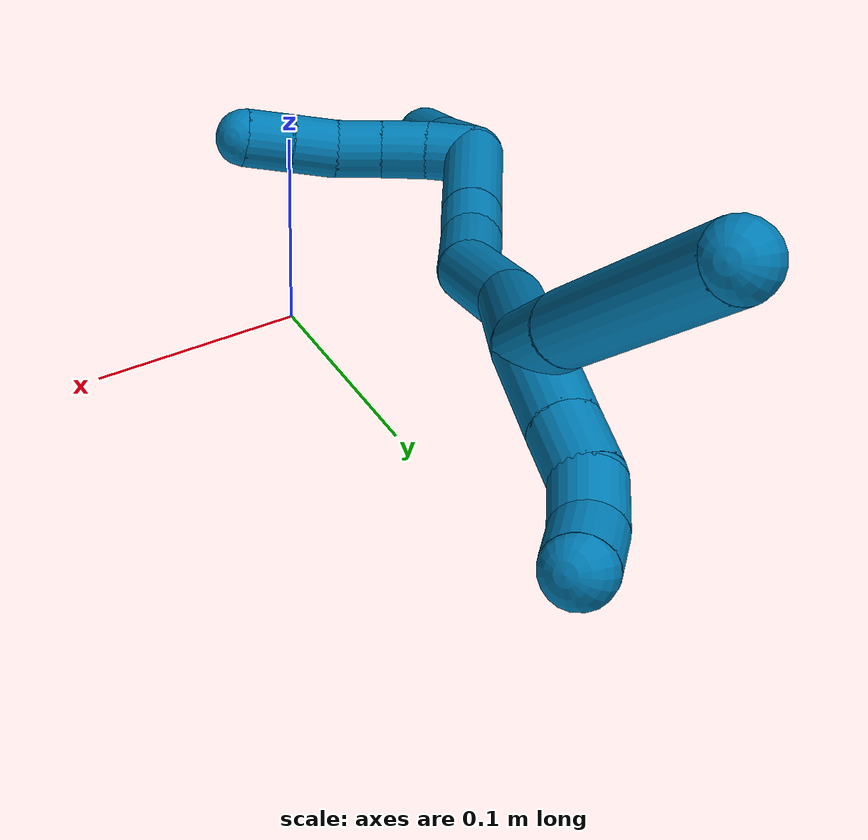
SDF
<sdf version="1.7">
 <world name="default">
  <model name="9">
   <static>0</static>
   <link name="9">
    <collision name="collision-cylinder-e_1_2_8">
     <pose>-0.010988 -0.005499 0.014569 0.360888 -0.614462 -0.115632</pose>
     <geometry><cylinder><radius>0.0125</radius><length>0.038117</length></cylinder></geometry>
     <surface>
      <friction><ode><mu>1.16</mu><mu2>1.16</mu2><slip1>0</slip1><slip2>0</slip2></ode></friction>
      <contact><ode><kp>1e+06</kp><kd>1</kd><max_vel>0</max_vel><min_depth>0.001</min_depth></ode></contact>
     </surface>
    </collision>
    <visual name="visual-cylinder-e_1_2_8">
     <pose>-0.010988 -0.005499 0.014569 0.360888 -0.614462 -0.115632</pose>
     <geometry><cylinder><radius>0.0125</radius><length>0.038117</length></cylinder></geometry>
     <material><ambient>0 0.490196 0.709804 1</ambient></material>
    </visual>
    <collision name="collision-cylinder-e_2_8_6">
     <pose>-0.0576 -0.027774 0.068874 0.399491 -0.690358 -0.145332</pose>
     <geometry><cylinder><radius>0.0125</radius><length>0.111883</length></cylinder></geometry>
     <surface>
      <friction><ode><mu>1.16</mu><mu2>1.16</mu2><slip1>0</slip1><slip2>0</slip2></ode></friction>
      <contact><ode><kp>1e+06</kp><kd>1</kd><max_vel>0</max_vel><min_depth>0.001</min_depth></ode></contact>
     </surface>
    </collision>
    <visual name="visual-cylinder-e_2_8_6">
     <pose>-0.0576 -0.027774 0.068874 0.399491 -0.690358 -0.145332</pose>
     <geometry><cylinder><radius>0.0125</radius><length>0.111883</length></cylinder></geometry>
     <material><ambient>0 0.490196 0.709804 1</ambient></material>
    </visual>
    <collision name="collision-cylinder-e_1_2_9">
     <pose>-0.011126 0.010168 0.010667 -0.761465 -0.646673 0.266662</pose>
     <geometry><cylinder><radius>0.0125</radius><length>0.03693</length></cylinder></geometry>
     <surface>
      <friction><ode><mu>1.16</mu><mu2>1.16</mu2><slip1>0</slip1><slip2>0</slip2></ode></friction>
      <contact><ode><kp>1e+06</kp><kd>1</kd><max_vel>0</max_vel><min_depth>0.001</min_depth></ode></contact>
     </surface>
    </collision>
    <visual name="visual-cylinder-e_1_2_9">
     <pose>-0.011126 0.010168 0.010667 -0.761465 -0.646673 0.266662</pose>
     <geometry><cylinder><radius>0.0125</radius><length>0.03693</length></cylinder></geometry>
     <material><ambient>0 0.490196 0.709804 1</ambient></material>
    </visual>
    <collision name="collision-cylinder-e_2_9_10">
     <pose>-0.029171 0.026537 0.02771 -0.771465 -0.66113 0.276911</pose>
     <geometry><cylinder><radius>0.0125</radius><length>0.022537</length></cylinder></geometry>
     <surface>
      <friction><ode><mu>1.16</mu><mu2>1.16</mu2><slip1>0</slip1><slip2>0</slip2></ode></friction>
      <contact><ode><kp>1e+06</kp><kd>1</kd><max_vel>0</max_vel><min_depth>0.001</min_depth></ode></contact>
     </surface>
    </collision>
    <visual name="visual-cylinder-e_2_9_10">
     <pose>-0.029171 0.026537 0.02771 -0.771465 -0.66113 0.276911</pose>
     <geometry><cylinder><radius>0.0125</radius><length>0.022537</length></cylinder></geometry>
     <material><ambient>0 0.490196 0.709804 1</ambient></material>
    </visual>
    <collision name="collision-cylinder-e_3_10_11">
     <pose>-0.039534 0.039045 0.041327 -0.71658 -0.344385 0.130062</pose>
     <geometry><cylinder><radius>0.0125</radius><length>0.020404</length></cylinder></geometry>
     <surface>
      <friction><ode><mu>1.16</mu><mu2>1.16</mu2><slip1>0</slip1><slip2>0</slip2></ode></friction>
      <contact><ode><kp>1e+06</kp><kd>1</kd><max_vel>0</max_vel><min_depth>0.001</min_depth></ode></contact>
     </surface>
    </collision>
    <visual name="visual-cylinder-e_3_10_11">
     <pose>-0.039534 0.039045 0.041327 -0.71658 -0.344385 0.130062</pose>
     <geometry><cylinder><radius>0.0125</radius><length>0.020404</length></cylinder></geometry>
     <material><ambient>0 0.490196 0.709804 1</ambient></material>
    </visual>
    <collision name="collision-cylinder-e_4_11_5">
     <pose>-0.045237 0.049093 0.057635 -0.391251 -0.22635 0.045038</pose>
     <geometry><cylinder><radius>0.0125</radius><length>0.020129</length></cylinder></geometry>
     <surface>
      <friction><ode><mu>1.16</mu><mu2>1.16</mu2><slip1>0</slip1><slip2>0</slip2></ode></friction>
      <contact><ode><kp>1e+06</kp><kd>1</kd><max_vel>0</max_vel><min_depth>0.001</min_depth></ode></contact>
     </surface>
    </collision>
    <visual name="visual-cylinder-e_4_11_5">
     <pose>-0.045237 0.049093 0.057635 -0.391251 -0.22635 0.045038</pose>
     <geometry><cylinder><radius>0.0125</radius><length>0.020129</length></cylinder></geometry>
     <material><ambient>0 0.490196 0.709804 1</ambient></material>
    </visual>
    <collision name="collision-cylinder-e_1_2_12">
     <pose>0.025975 -0.000178 -0.060318 3.13864 0.406635 3.12725</pose>
     <geometry><cylinder><radius>0.0125</radius><length>0.131347</length></cylinder></geometry>
     <surface>
      <friction><ode><mu>1.16</mu><mu2>1.16</mu2><slip1>0</slip1><slip2>0</slip2></ode></friction>
      <contact><ode><kp>1e+06</kp><kd>1</kd><max_vel>0</max_vel><min_depth>0.001</min_depth></ode></contact>
     </surface>
    </collision>
    <visual name="visual-cylinder-e_1_2_12">
     <pose>0.025975 -0.000178 -0.060318 3.13864 0.406635 3.12725</pose>
     <geometry><cylinder><radius>0.0125</radius><length>0.131347</length></cylinder></geometry>
     <material><ambient>0 0.490196 0.709804 1</ambient></material>
    </visual>
    <collision name="collision-cylinder-e_2_12_13">
     <pose>0.069725 -0.002927 -0.142777 3.02602 0.673171 2.81389</pose>
     <geometry><cylinder><radius>0.0125</radius><length>0.057018</length></cylinder></geometry>
     <surface>
      <friction><ode><mu>1.16</mu><mu2>1.16</mu2><slip1>0</slip1><slip2>0</slip2></ode></friction>
      <contact><ode><kp>1e+06</kp><kd>1</kd><max_vel>0</max_vel><min_depth>0.001</min_depth></ode></contact>
     </surface>
    </collision>
    <visual name="visual-cylinder-e_2_12_13">
     <pose>0.069725 -0.002927 -0.142777 3.02602 0.673171 2.81389</pose>
     <geometry><cylinder><radius>0.0125</radius><length>0.057018</length></cylinder></geometry>
     <material><ambient>0 0.490196 0.709804 1</ambient></material>
    </visual>
    <collision name="collision-cylinder-e_3_13_14">
     <pose>0.093938 -0.01 -0.180896 2.86694 0.36998 1.86938</pose>
     <geometry><cylinder><radius>0.0125</radius><length>0.03561</length></cylinder></geometry>
     <surface>
      <friction><ode><mu>1.16</mu><mu2>1.16</mu2><slip1>0</slip1><slip2>0</slip2></ode></friction>
      <contact><ode><kp>1e+06</kp><kd>1</kd><max_vel>0</max_vel><min_depth>0.001</min_depth></ode></contact>
     </surface>
    </collision>
    <visual name="visual-cylinder-e_3_13_14">
     <pose>0.093938 -0.01 -0.180896 2.86694 0.36998 1.86938</pose>
     <geometry><cylinder><radius>0.0125</radius><length>0.03561</length></cylinder></geometry>
     <material><ambient>0 0.490196 0.709804 1</ambient></material>
    </visual>
    <collision name="collision-cylinder-e_4_14_15">
     <pose>0.104559 -0.019277 -0.205916 2.65571 0.388339 1.34148</pose>
     <geometry><cylinder><radius>0.0125</radius><length>0.022095</length></cylinder></geometry>
     <surface>
      <friction><ode><mu>1.16</mu><mu2>1.16</mu2><slip1>0</slip1><slip2>0</slip2></ode></friction>
      <contact><ode><kp>1e+06</kp><kd>1</kd><max_vel>0</max_vel><min_depth>0.001</min_depth></ode></contact>
     </surface>
    </collision>
    <visual name="visual-cylinder-e_4_14_15">
     <pose>0.104559 -0.019277 -0.205916 2.65571 0.388339 1.34148</pose>
     <geometry><cylinder><radius>0.0125</radius><length>0.022095</length></cylinder></geometry>
     <material><ambient>0 0.490196 0.709804 1</ambient></material>
    </visual>
    <collision name="collision-cylinder-e_5_15_1">
     <pose>0.118661 -0.035229 -0.237402 2.67955 0.376693 1.362</pose>
     <geometry><cylinder><radius>0.0125</radius><length>0.05393</length></cylinder></geometry>
     <surface>
      <friction><ode><mu>1.16</mu><mu2>1.16</mu2><slip1>0</slip1><slip2>0</slip2></ode></friction>
      <contact><ode><kp>1e+06</kp><kd>1</kd><max_vel>0</max_vel><min_depth>0.001</min_depth></ode></contact>
     </surface>
    </collision>
    <visual name="visual-cylinder-e_5_15_1">
     <pose>0.118661 -0.035229 -0.237402 2.67955 0.376693 1.362</pose>
     <geometry><cylinder><radius>0.0125</radius><length>0.05393</length></cylinder></geometry>
     <material><ambient>0 0.490196 0.709804 1</ambient></material>
    </visual>
    <collision name="collision-cylinder-e_1_1_16">
     <pose>0.138343 -0.046096 -0.257704 -0.143991 1.35248 -0.115618</pose>
     <geometry><cylinder><radius>0.0125</radius><length>0.02</length></cylinder></geometry>
     <surface>
      <friction><ode><mu>1.16</mu><mu2>1.16</mu2><slip1>0</slip1><slip2>0</slip2></ode></friction>
      <contact><ode><kp>1e+06</kp><kd>1</kd><max_vel>0</max_vel><min_depth>0.001</min_depth></ode></contact>
     </surface>
    </collision>
    <visual name="visual-cylinder-e_1_1_16">
     <pose>0.138343 -0.046096 -0.257704 -0.143991 1.35248 -0.115618</pose>
     <geometry><cylinder><radius>0.0125</radius><length>0.02</length></cylinder></geometry>
     <material><ambient>0 0.490196 0.709804 1</ambient></material>
    </visual>
    <collision name="collision-cylinder-e_2_16_17">
     <pose>0.157458 -0.044833 -0.252152 -0.272628 1.20909 -0.188951</pose>
     <geometry><cylinder><radius>0.0125</radius><length>0.02</length></cylinder></geometry>
     <surface>
      <friction><ode><mu>1.16</mu><mu2>1.16</mu2><slip1>0</slip1><slip2>0</slip2></ode></friction>
      <contact><ode><kp>1e+06</kp><kd>1</kd><max_vel>0</max_vel><min_depth>0.001</min_depth></ode></contact>
     </surface>
    </collision>
    <visual name="visual-cylinder-e_2_16_17">
     <pose>0.157458 -0.044833 -0.252152 -0.272628 1.20909 -0.188951</pose>
     <geometry><cylinder><radius>0.0125</radius><length>0.02</length></cylinder></geometry>
     <material><ambient>0 0.490196 0.709804 1</ambient></material>
    </visual>
    <collision name="collision-cylinder-e_3_17_18">
     <pose>0.175768 -0.042719 -0.24445 -0.263979 1.10982 -0.164223</pose>
     <geometry><cylinder><radius>0.0125</radius><length>0.02</length></cylinder></geometry>
     <surface>
      <friction><ode><mu>1.16</mu><mu2>1.16</mu2><slip1>0</slip1><slip2>0</slip2></ode></friction>
      <contact><ode><kp>1e+06</kp><kd>1</kd><max_vel>0</max_vel><min_depth>0.001</min_depth></ode></contact>
     </surface>
    </collision>
    <visual name="visual-cylinder-e_3_17_18">
     <pose>0.175768 -0.042719 -0.24445 -0.263979 1.10982 -0.164223</pose>
     <geometry><cylinder><radius>0.0125</radius><length>0.02</length></cylinder></geometry>
     <material><ambient>0 0.490196 0.709804 1</ambient></material>
    </visual>
    <collision name="collision-cylinder-e_4_18_19">
     <pose>0.192908 -0.041694 -0.234412 0.023637 0.958639 0.012286</pose>
     <geometry><cylinder><radius>0.0125</radius><length>0.02</length></cylinder></geometry>
     <surface>
      <friction><ode><mu>1.16</mu><mu2>1.16</mu2><slip1>0</slip1><slip2>0</slip2></ode></friction>
      <contact><ode><kp>1e+06</kp><kd>1</kd><max_vel>0</max_vel><min_depth>0.001</min_depth></ode></contact>
     </surface>
    </collision>
    <visual name="visual-cylinder-e_4_18_19">
     <pose>0.192908 -0.041694 -0.234412 0.023637 0.958639 0.012286</pose>
     <geometry><cylinder><radius>0.0125</radius><length>0.02</length></cylinder></geometry>
     <material><ambient>0 0.490196 0.709804 1</ambient></material>
    </visual>
    <collision name="collision-cylinder-e_5_19_4">
     <pose>0.209352 -0.041954 -0.223031 0.021961 0.971902 0.0116</pose>
     <geometry><cylinder><radius>0.0125</radius><length>0.02</length></cylinder></geometry>
     <surface>
      <friction><ode><mu>1.16</mu><mu2>1.16</mu2><slip1>0</slip1><slip2>0</slip2></ode></friction>
      <contact><ode><kp>1e+06</kp><kd>1</kd><max_vel>0</max_vel><min_depth>0.001</min_depth></ode></contact>
     </surface>
    </collision>
    <visual name="visual-cylinder-e_5_19_4">
     <pose>0.209352 -0.041954 -0.223031 0.021961 0.971902 0.0116</pose>
     <geometry><cylinder><radius>0.0125</radius><length>0.02</length></cylinder></geometry>
     <material><ambient>0 0.490196 0.709804 1</ambient></material>
    </visual>
    <collision name="collision-cylinder-e_1_1_20">
     <pose>0.144898 -0.046789 -0.283311 3.12533 0.607602 3.08972</pose>
     <geometry><cylinder><radius>0.0125</radius><length>0.057166</length></cylinder></geometry>
     <surface>
      <friction><ode><mu>1.16</mu><mu2>1.16</mu2><slip1>0</slip1><slip2>0</slip2></ode></friction>
      <contact><ode><kp>1e+06</kp><kd>1</kd><max_vel>0</max_vel><min_depth>0.001</min_depth></ode></contact>
     </surface>
    </collision>
    <visual name="visual-cylinder-e_1_1_20">
     <pose>0.144898 -0.046789 -0.283311 3.12533 0.607602 3.08972</pose>
     <geometry><cylinder><radius>0.0125</radius><length>0.057166</length></cylinder></geometry>
     <material><ambient>0 0.490196 0.709804 1</ambient></material>
    </visual>
    <collision name="collision-cylinder-e_2_20_3">
     <pose>0.173746 -0.048198 -0.324114 3.08237 0.62494 2.95874</pose>
     <geometry><cylinder><radius>0.0125</radius><length>0.042834</length></cylinder></geometry>
     <surface>
      <friction><ode><mu>1.16</mu><mu2>1.16</mu2><slip1>0</slip1><slip2>0</slip2></ode></friction>
      <contact><ode><kp>1e+06</kp><kd>1</kd><max_vel>0</max_vel><min_depth>0.001</min_depth></ode></contact>
     </surface>
    </collision>
    <visual name="visual-cylinder-e_2_20_3">
     <pose>0.173746 -0.048198 -0.324114 3.08237 0.62494 2.95874</pose>
     <geometry><cylinder><radius>0.0125</radius><length>0.042834</length></cylinder></geometry>
     <material><ambient>0 0.490196 0.709804 1</ambient></material>
    </visual>
    <collision name="collision-sphere-3">
     <pose>0.186276 -0.049226 -0.341453 0 -0 0</pose>
     <geometry><sphere><radius>0.0125</radius></sphere></geometry>
     <surface>
      <friction><ode><mu>1.16</mu><mu2>1.16</mu2><slip1>0</slip1><slip2>0</slip2></ode></friction>
      <contact><ode><kp>1e+06</kp><kd>1</kd><max_vel>0</max_vel><min_depth>0.001</min_depth></ode></contact>
     </surface>
    </collision>
    <visual name="visual-sphere-3">
     <pose>0.186276 -0.049226 -0.341453 0 -0 0</pose>
     <geometry><sphere><radius>0.0125</radius></sphere></geometry>
     <material><ambient>0 0.490196 0.709804 1</ambient></material>
    </visual>
    <collision name="collision-sphere-20">
     <pose>0.161216 -0.04717 -0.306775 0 -0 0</pose>
     <geometry><sphere><radius>0.0125</radius></sphere></geometry>
     <surface>
      <friction><ode><mu>1.16</mu><mu2>1.16</mu2><slip1>0</slip1><slip2>0</slip2></ode></friction>
      <contact><ode><kp>1e+06</kp><kd>1</kd><max_vel>0</max_vel><min_depth>0.001</min_depth></ode></contact>
     </surface>
    </collision>
    <visual name="visual-sphere-20">
     <pose>0.161216 -0.04717 -0.306775 0 -0 0</pose>
     <geometry><sphere><radius>0.0125</radius></sphere></geometry>
     <material><ambient>0 0.490196 0.709804 1</ambient></material>
    </visual>
    <collision name="collision-sphere-4">
     <pose>0.217611 -0.042078 -0.217395 0 -0 0</pose>
     <geometry><sphere><radius>0.0125</radius></sphere></geometry>
     <surface>
      <friction><ode><mu>1.16</mu><mu2>1.16</mu2><slip1>0</slip1><slip2>0</slip2></ode></friction>
      <contact><ode><kp>1e+06</kp><kd>1</kd><max_vel>0</max_vel><min_depth>0.001</min_depth></ode></contact>
     </surface>
    </collision>
    <visual name="visual-sphere-4">
     <pose>0.217611 -0.042078 -0.217395 0 -0 0</pose>
     <geometry><sphere><radius>0.0125</radius></sphere></geometry>
     <material><ambient>0 0.490196 0.709804 1</ambient></material>
    </visual>
    <collision name="collision-sphere-11">
     <pose>-0.042978 0.045353 0.048568 0 -0 0</pose>
     <geometry><sphere><radius>0.0125</radius></sphere></geometry>
     <surface>
      <friction><ode><mu>1.16</mu><mu2>1.16</mu2><slip1>0</slip1><slip2>0</slip2></ode></friction>
      <contact><ode><kp>1e+06</kp><kd>1</kd><max_vel>0</max_vel><min_depth>0.001</min_depth></ode></contact>
     </surface>
    </collision>
    <visual name="visual-sphere-11">
     <pose>-0.042978 0.045353 0.048568 0 -0 0</pose>
     <geometry><sphere><radius>0.0125</radius></sphere></geometry>
     <material><ambient>0 0.490196 0.709804 1</ambient></material>
    </visual>
    <collision name="collision-sphere-10">
     <pose>-0.036089 0.032738 0.034086 0 -0 0</pose>
     <geometry><sphere><radius>0.0125</radius></sphere></geometry>
     <surface>
      <friction><ode><mu>1.16</mu><mu2>1.16</mu2><slip1>0</slip1><slip2>0</slip2></ode></friction>
      <contact><ode><kp>1e+06</kp><kd>1</kd><max_vel>0</max_vel><min_depth>0.001</min_depth></ode></contact>
     </surface>
    </collision>
    <visual name="visual-sphere-10">
     <pose>-0.036089 0.032738 0.034086 0 -0 0</pose>
     <geometry><sphere><radius>0.0125</radius></sphere></geometry>
     <material><ambient>0 0.490196 0.709804 1</ambient></material>
    </visual>
    <collision name="collision-sphere-6">
     <pose>-0.093224 -0.04455 0.10861 0 -0 0</pose>
     <geometry><sphere><radius>0.0125</radius></sphere></geometry>
     <surface>
      <friction><ode><mu>1.16</mu><mu2>1.16</mu2><slip1>0</slip1><slip2>0</slip2></ode></friction>
      <contact><ode><kp>1e+06</kp><kd>1</kd><max_vel>0</max_vel><min_depth>0.001</min_depth></ode></contact>
     </surface>
    </collision>
    <visual name="visual-sphere-6">
     <pose>-0.093224 -0.04455 0.10861 0 -0 0</pose>
     <geometry><sphere><radius>0.0125</radius></sphere></geometry>
     <material><ambient>0 0.490196 0.709804 1</ambient></material>
    </visual>
    <collision name="collision-sphere-9">
     <pose>-0.022252 0.020336 0.021334 0 -0 0</pose>
     <geometry><sphere><radius>0.0125</radius></sphere></geometry>
     <surface>
      <friction><ode><mu>1.16</mu><mu2>1.16</mu2><slip1>0</slip1><slip2>0</slip2></ode></friction>
      <contact><ode><kp>1e+06</kp><kd>1</kd><max_vel>0</max_vel><min_depth>0.001</min_depth></ode></contact>
     </surface>
    </collision>
    <visual name="visual-sphere-9">
     <pose>-0.022252 0.020336 0.021334 0 -0 0</pose>
     <geometry><sphere><radius>0.0125</radius></sphere></geometry>
     <material><ambient>0 0.490196 0.709804 1</ambient></material>
    </visual>
    <collision name="collision-sphere-2">
     <geometry><sphere><radius>0.0125</radius></sphere></geometry>
     <surface>
      <friction><ode><mu>1.16</mu><mu2>1.16</mu2><slip1>0</slip1><slip2>0</slip2></ode></friction>
      <contact><ode><kp>1e+06</kp><kd>1</kd><max_vel>0</max_vel><min_depth>0.001</min_depth></ode></contact>
     </surface>
    </collision>
    <visual name="visual-sphere-2">
     <geometry><sphere><radius>0.0125</radius></sphere></geometry>
     <material><ambient>0 0.490196 0.709804 1</ambient></material>
    </visual>
    <collision name="collision-sphere-19">
     <pose>0.201092 -0.04183 -0.228667 0 -0 0</pose>
     <geometry><sphere><radius>0.0125</radius></sphere></geometry>
     <surface>
      <friction><ode><mu>1.16</mu><mu2>1.16</mu2><slip1>0</slip1><slip2>0</slip2></ode></friction>
      <contact><ode><kp>1e+06</kp><kd>1</kd><max_vel>0</max_vel><min_depth>0.001</min_depth></ode></contact>
     </surface>
    </collision>
    <visual name="visual-sphere-19">
     <pose>0.201092 -0.04183 -0.228667 0 -0 0</pose>
     <geometry><sphere><radius>0.0125</radius></sphere></geometry>
     <material><ambient>0 0.490196 0.709804 1</ambient></material>
    </visual>
    <collision name="collision-sphere-8">
     <pose>-0.021975 -0.010997 0.029139 0 -0 0</pose>
     <geometry><sphere><radius>0.0125</radius></sphere></geometry>
     <surface>
      <friction><ode><mu>1.16</mu><mu2>1.16</mu2><slip1>0</slip1><slip2>0</slip2></ode></friction>
      <contact><ode><kp>1e+06</kp><kd>1</kd><max_vel>0</max_vel><min_depth>0.001</min_depth></ode></contact>
     </surface>
    </collision>
    <visual name="visual-sphere-8">
     <pose>-0.021975 -0.010997 0.029139 0 -0 0</pose>
     <geometry><sphere><radius>0.0125</radius></sphere></geometry>
     <material><ambient>0 0.490196 0.709804 1</ambient></material>
    </visual>
    <collision name="collision-sphere-5">
     <pose>-0.047496 0.052833 0.066702 0 -0 0</pose>
     <geometry><sphere><radius>0.0125</radius></sphere></geometry>
     <surface>
      <friction><ode><mu>1.16</mu><mu2>1.16</mu2><slip1>0</slip1><slip2>0</slip2></ode></friction>
      <contact><ode><kp>1e+06</kp><kd>1</kd><max_vel>0</max_vel><min_depth>0.001</min_depth></ode></contact>
     </surface>
    </collision>
    <visual name="visual-sphere-5">
     <pose>-0.047496 0.052833 0.066702 0 -0 0</pose>
     <geometry><sphere><radius>0.0125</radius></sphere></geometry>
     <material><ambient>0 0.490196 0.709804 1</ambient></material>
    </visual>
    <collision name="collision-sphere-12">
     <pose>0.05195 -0.000357 -0.120636 0 -0 0</pose>
     <geometry><sphere><radius>0.0125</radius></sphere></geometry>
     <surface>
      <friction><ode><mu>1.16</mu><mu2>1.16</mu2><slip1>0</slip1><slip2>0</slip2></ode></friction>
      <contact><ode><kp>1e+06</kp><kd>1</kd><max_vel>0</max_vel><min_depth>0.001</min_depth></ode></contact>
     </surface>
    </collision>
    <visual name="visual-sphere-12">
     <pose>0.05195 -0.000357 -0.120636 0 -0 0</pose>
     <geometry><sphere><radius>0.0125</radius></sphere></geometry>
     <material><ambient>0 0.490196 0.709804 1</ambient></material>
    </visual>
    <collision name="collision-sphere-13">
     <pose>0.087499 -0.005497 -0.164918 0 -0 0</pose>
     <geometry><sphere><radius>0.0125</radius></sphere></geometry>
     <surface>
      <friction><ode><mu>1.16</mu><mu2>1.16</mu2><slip1>0</slip1><slip2>0</slip2></ode></friction>
      <contact><ode><kp>1e+06</kp><kd>1</kd><max_vel>0</max_vel><min_depth>0.001</min_depth></ode></contact>
     </surface>
    </collision>
    <visual name="visual-sphere-13">
     <pose>0.087499 -0.005497 -0.164918 0 -0 0</pose>
     <geometry><sphere><radius>0.0125</radius></sphere></geometry>
     <material><ambient>0 0.490196 0.709804 1</ambient></material>
    </visual>
    <collision name="collision-sphere-14">
     <pose>0.100376 -0.014502 -0.196874 0 -0 0</pose>
     <geometry><sphere><radius>0.0125</radius></sphere></geometry>
     <surface>
      <friction><ode><mu>1.16</mu><mu2>1.16</mu2><slip1>0</slip1><slip2>0</slip2></ode></friction>
      <contact><ode><kp>1e+06</kp><kd>1</kd><max_vel>0</max_vel><min_depth>0.001</min_depth></ode></contact>
     </surface>
    </collision>
    <visual name="visual-sphere-14">
     <pose>0.100376 -0.014502 -0.196874 0 -0 0</pose>
     <geometry><sphere><radius>0.0125</radius></sphere></geometry>
     <material><ambient>0 0.490196 0.709804 1</ambient></material>
    </visual>
    <collision name="collision-sphere-15">
     <pose>0.108742 -0.024052 -0.214957 0 -0 0</pose>
     <geometry><sphere><radius>0.0125</radius></sphere></geometry>
     <surface>
      <friction><ode><mu>1.16</mu><mu2>1.16</mu2><slip1>0</slip1><slip2>0</slip2></ode></friction>
      <contact><ode><kp>1e+06</kp><kd>1</kd><max_vel>0</max_vel><min_depth>0.001</min_depth></ode></contact>
     </surface>
    </collision>
    <visual name="visual-sphere-15">
     <pose>0.108742 -0.024052 -0.214957 0 -0 0</pose>
     <geometry><sphere><radius>0.0125</radius></sphere></geometry>
     <material><ambient>0 0.490196 0.709804 1</ambient></material>
    </visual>
    <collision name="collision-sphere-1">
     <pose>0.12858 -0.046407 -0.259847 0 -0 0</pose>
     <geometry><sphere><radius>0.0125</radius></sphere></geometry>
     <surface>
      <friction><ode><mu>1.16</mu><mu2>1.16</mu2><slip1>0</slip1><slip2>0</slip2></ode></friction>
      <contact><ode><kp>1e+06</kp><kd>1</kd><max_vel>0</max_vel><min_depth>0.001</min_depth></ode></contact>
     </surface>
    </collision>
    <visual name="visual-sphere-1">
     <pose>0.12858 -0.046407 -0.259847 0 -0 0</pose>
     <geometry><sphere><radius>0.0125</radius></sphere></geometry>
     <material><ambient>0 0.490196 0.709804 1</ambient></material>
    </visual>
    <collision name="collision-sphere-18">
     <pose>0.184724 -0.041558 -0.240156 0 -0 0</pose>
     <geometry><sphere><radius>0.0125</radius></sphere></geometry>
     <surface>
      <friction><ode><mu>1.16</mu><mu2>1.16</mu2><slip1>0</slip1><slip2>0</slip2></ode></friction>
      <contact><ode><kp>1e+06</kp><kd>1</kd><max_vel>0</max_vel><min_depth>0.001</min_depth></ode></contact>
     </surface>
    </collision>
    <visual name="visual-sphere-18">
     <pose>0.184724 -0.041558 -0.240156 0 -0 0</pose>
     <geometry><sphere><radius>0.0125</radius></sphere></geometry>
     <material><ambient>0 0.490196 0.709804 1</ambient></material>
    </visual>
    <collision name="collision-sphere-16">
     <pose>0.148106 -0.045785 -0.25556 0 -0 0</pose>
     <geometry><sphere><radius>0.0125</radius></sphere></geometry>
     <surface>
      <friction><ode><mu>1.16</mu><mu2>1.16</mu2><slip1>0</slip1><slip2>0</slip2></ode></friction>
      <contact><ode><kp>1e+06</kp><kd>1</kd><max_vel>0</max_vel><min_depth>0.001</min_depth></ode></contact>
     </surface>
    </collision>
    <visual name="visual-sphere-16">
     <pose>0.148106 -0.045785 -0.25556 0 -0 0</pose>
     <geometry><sphere><radius>0.0125</radius></sphere></geometry>
     <material><ambient>0 0.490196 0.709804 1</ambient></material>
    </visual>
    <collision name="collision-sphere-17">
     <pose>0.166811 -0.04388 -0.248744 0 -0 0</pose>
     <geometry><sphere><radius>0.0125</radius></sphere></geometry>
     <surface>
      <friction><ode><mu>1.16</mu><mu2>1.16</mu2><slip1>0</slip1><slip2>0</slip2></ode></friction>
      <contact><ode><kp>1e+06</kp><kd>1</kd><max_vel>0</max_vel><min_depth>0.001</min_depth></ode></contact>
     </surface>
    </collision>
    <visual name="visual-sphere-17">
     <pose>0.166811 -0.04388 -0.248744 0 -0 0</pose>
     <geometry><sphere><radius>0.0125</radius></sphere></geometry>
     <material><ambient>0 0.490196 0.709804 1</ambient></material>
    </visual>
    <inertial>
     <pose>0.057327 -0.016688 -0.110518 0 -0 0</pose>
     <mass>0.75</mass>
     <inertia><ixx>-7.4e-05</ixx><ixy>0</ixy><ixz>0</ixz><iyy>0.000388</iyy><iyz>0</iyz><izz>2e-06</izz></inertia>
    </inertial>
   </link>
   <pose>0.081032 0.321991 0.23239 -1.03512 0.12399 -0.928439</pose>
  </model>
 </world>
</sdf>
